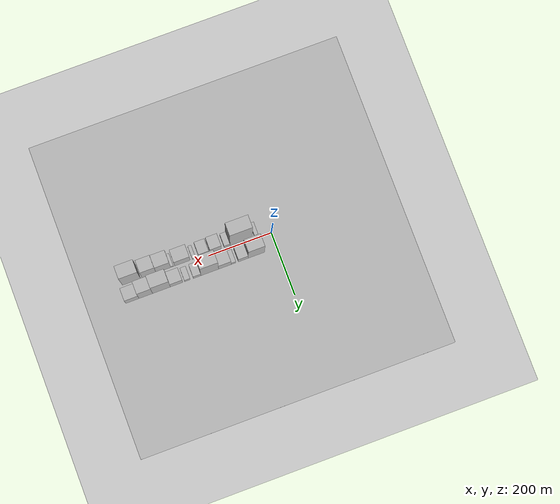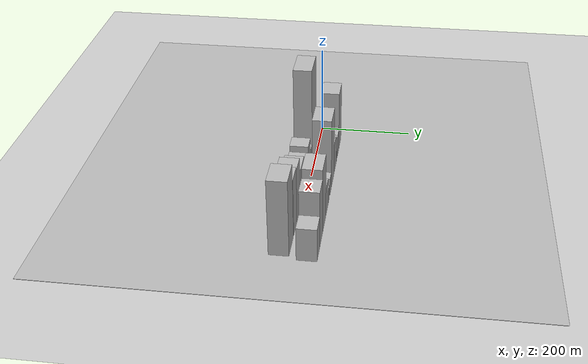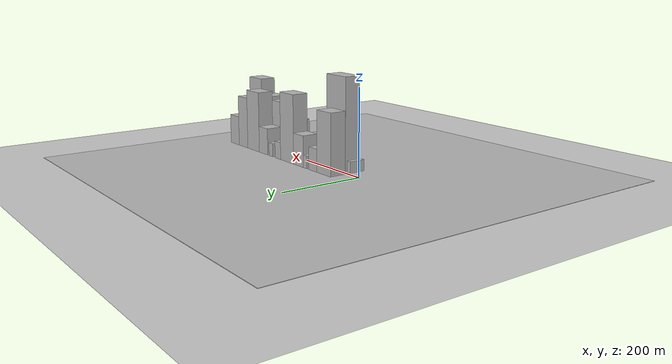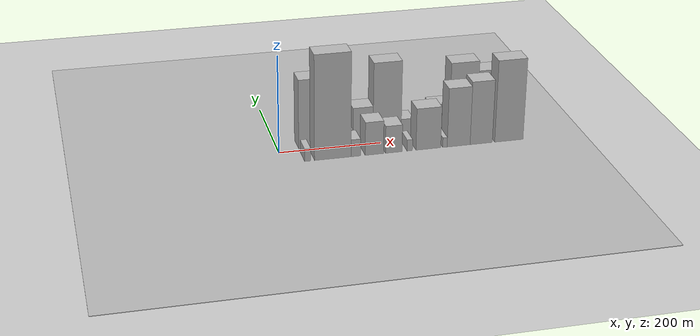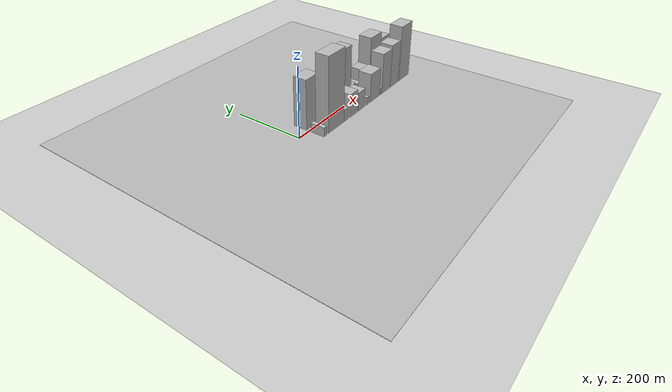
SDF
<?xml version="1.0" encoding="utf-8"?>

<sdf version="1.6">

   <world name="default">

      <gui fullscreen="0">

         <camera name="user_camera">

            <pose>-15 0 4.57585 0 0 0</pose>

            <view_controller>orbit</view_controller>

         </camera>

      </gui>

      <scene>

         <sky>

           <clouds>

             <speed>12</speed>

           </clouds>

         </sky>

         <ambient>0.4 0.4 0.4 1</ambient>

         <background>0.7 0.7 0.7 1</background>

         <shadows>1</shadows>

      </scene>

      <gravity>0 0 -9.8066</gravity>

      <magnetic_field>6e-06 2.3e-05 -4.2e-05</magnetic_field>

      <physics default="0" name="default_physics" type="ode">

         <ode>

            <solver>

               <type>quick</type>

               <iters>10</iters>

               <sor>1.0</sor>

               <use_dynamic_moi_rescaling>0</use_dynamic_moi_rescaling>

            </solver>

            <constraints>

               <cfm>0</cfm>

               <erp>0.2</erp>

               <contact_max_correcting_vel>100</contact_max_correcting_vel>

               <contact_surface_layer>0.001</contact_surface_layer>

            </constraints>

         </ode>

         <max_step_size>0.004</max_step_size>

         <real_time_factor>1</real_time_factor>

         <real_time_update_rate>250</real_time_update_rate>

      </physics>

      <light name="sun" type="directional">

         <cast_shadows>1</cast_shadows>

         <pose>0 0 10 0 0 0</pose>

         <diffuse>0.8 0.8 0.8 1</diffuse>

         <specular>0.2 0.2 0.2 1</specular>

         <attenuation>

            <range>1000</range>

            <constant>0.9</constant>

            <linear>0.01</linear>

            <quadratic>0.001</quadratic>

         </attenuation>

         <direction>-0.5 0.1 -0.9</direction>

      </light>

      <include>

         <name>ground_plane_1</name>

         <uri>model://HANNAS_ground_plane</uri>

         <pose>0 0 0  0 0 0</pose>

      </include>

      <include>

         <name>ground_plane_2</name>

         <uri>model://HANNAS_ground_plane</uri>

         <pose>100 0 0  0 0 0</pose>

      </include>

      <model name="building_1">

         <static>1</static>

         <pose frame="">66.0236 27.5000 0 0.000000 0.000000 1.570796</pose>

         <link name="link">

            <pose frame="">0 0 72.00 0 0 0</pose>

            <collision name="collision">

               <geometry>

                  <box>

                     <size>40.0000 52.0472 144.0000</size>

                  </box>

               </geometry>

               <max_contacts>10</max_contacts>

               <surface>

                  <contact>

                     <ode/>

                  </contact>

                  <bounce/>

                  <friction>

                     <torsional>

                        <ode/>

                     </torsional>

                     <ode/>

                  </friction>

               </surface>

            </collision>

            <visual name="visual">

               <cast_shadows>0</cast_shadows>

               <geometry>

                  <box>

                     <size>40.0000 52.0472 144.0000</size>

                  </box>

               </geometry>

               <material>

                  <script>

                     <uri>model://HANNAS_wall/materials/scripts</uri>

                     <uri>model://HANNAS_wall/materials/textures</uri>

                     <name>vrc/HANNAS_wall</name>

                  </script>

               </material>

            </visual>

            <self_collide>0</self_collide>

            <enable_wind>0</enable_wind>

            <kinematic>0</kinematic>

         </link>

      </model>

      <model name="building_2">

         <static>1</static>

         <pose frame="">107.8734 27.5000 0 0.000000 0.000000 1.570796</pose>

         <link name="link">

            <pose frame="">0 0 27.00 0 0 0</pose>

            <collision name="collision">

               <geometry>

                  <box>

                     <size>40.0000 31.6524 54.0000</size>

                  </box>

               </geometry>

               <max_contacts>10</max_contacts>

               <surface>

                  <contact>

                     <ode/>

                  </contact>

                  <bounce/>

                  <friction>

                     <torsional>

                        <ode/>

                     </torsional>

                     <ode/>

                  </friction>

               </surface>

            </collision>

            <visual name="visual">

               <cast_shadows>0</cast_shadows>

               <geometry>

                  <box>

                     <size>40.0000 31.6524 54.0000</size>

                  </box>

               </geometry>

               <material>

                  <script>

                     <uri>model://HANNAS_wall/materials/scripts</uri>

                     <uri>model://HANNAS_wall/materials/textures</uri>

                     <name>vrc/HANNAS_wall</name>

                  </script>

               </material>

            </visual>

            <self_collide>0</self_collide>

            <enable_wind>0</enable_wind>

            <kinematic>0</kinematic>

         </link>

      </model>

      <model name="building_3">

         <static>1</static>

         <pose frame="">139.3408 27.5000 0 0.000000 0.000000 1.570796</pose>

         <link name="link">

            <pose frame="">0 0 15.00 0 0 0</pose>

            <collision name="collision">

               <geometry>

                  <box>

                     <size>40.0000 15.2824 30.0000</size>

                  </box>

               </geometry>

               <max_contacts>10</max_contacts>

               <surface>

                  <contact>

                     <ode/>

                  </contact>

                  <bounce/>

                  <friction>

                     <torsional>

                        <ode/>

                     </torsional>

                     <ode/>

                  </friction>

               </surface>

            </collision>

            <visual name="visual">

               <cast_shadows>0</cast_shadows>

               <geometry>

                  <box>

                     <size>40.0000 15.2824 30.0000</size>

                  </box>

               </geometry>

               <material>

                  <script>

                     <uri>model://HANNAS_wall/materials/scripts</uri>

                     <uri>model://HANNAS_wall/materials/textures</uri>

                     <name>vrc/HANNAS_wall</name>

                  </script>

               </material>

            </visual>

            <self_collide>0</self_collide>

            <enable_wind>0</enable_wind>

            <kinematic>0</kinematic>

         </link>

      </model>

      <model name="building_4">

         <static>1</static>

         <pose frame="">167.0025 27.5000 0 0.000000 0.000000 1.570796</pose>

         <link name="link">

            <pose frame="">0 0 37.50 0 0 0</pose>

            <collision name="collision">

               <geometry>

                  <box>

                     <size>40.0000 40.0409 75.0000</size>

                  </box>

               </geometry>

               <max_contacts>10</max_contacts>

               <surface>

                  <contact>

                     <ode/>

                  </contact>

                  <bounce/>

                  <friction>

                     <torsional>

                        <ode/>

                     </torsional>

                     <ode/>

                  </friction>

               </surface>

            </collision>

            <visual name="visual">

               <cast_shadows>0</cast_shadows>

               <geometry>

                  <box>

                     <size>40.0000 40.0409 75.0000</size>

                  </box>

               </geometry>

               <material>

                  <script>

                     <uri>model://HANNAS_wall/materials/scripts</uri>

                     <uri>model://HANNAS_wall/materials/textures</uri>

                     <name>vrc/HANNAS_wall</name>

                  </script>

               </material>

            </visual>

            <self_collide>0</self_collide>

            <enable_wind>0</enable_wind>

            <kinematic>0</kinematic>

         </link>

      </model>

      <model name="building_5">

         <static>1</static>

         <pose frame="">215.1390 27.5000 0 0.000000 0.000000 1.570796</pose>

         <link name="link">

            <pose frame="">0 0 82.50 0 0 0</pose>

            <collision name="collision">

               <geometry>

                  <box>

                     <size>40.0000 56.2321 165.0000</size>

                  </box>

               </geometry>

               <max_contacts>10</max_contacts>

               <surface>

                  <contact>

                     <ode/>

                  </contact>

                  <bounce/>

                  <friction>

                     <torsional>

                        <ode/>

                     </torsional>

                     <ode/>

                  </friction>

               </surface>

            </collision>

            <visual name="visual">

               <cast_shadows>0</cast_shadows>

               <geometry>

                  <box>

                     <size>40.0000 56.2321 165.0000</size>

                  </box>

               </geometry>

               <material>

                  <script>

                     <uri>model://HANNAS_wall/materials/scripts</uri>

                     <uri>model://HANNAS_wall/materials/textures</uri>

                     <name>vrc/HANNAS_wall</name>

                  </script>

               </material>

            </visual>

            <self_collide>0</self_collide>

            <enable_wind>0</enable_wind>

            <kinematic>0</kinematic>

         </link>

      </model>

      <model name="building_6">

         <static>1</static>

         <pose frame="">255.5526 27.5000 0 0.000000 0.000000 1.570796</pose>

         <link name="link">

            <pose frame="">0 0 21.00 0 0 0</pose>

            <collision name="collision">

               <geometry>

                  <box>

                     <size>40.0000 24.5952 42.0000</size>

                  </box>

               </geometry>

               <max_contacts>10</max_contacts>

               <surface>

                  <contact>

                     <ode/>

                  </contact>

                  <bounce/>

                  <friction>

                     <torsional>

                        <ode/>

                     </torsional>

                     <ode/>

                  </friction>

               </surface>

            </collision>

            <visual name="visual">

               <cast_shadows>0</cast_shadows>

               <geometry>

                  <box>

                     <size>40.0000 24.5952 42.0000</size>

                  </box>

               </geometry>

               <material>

                  <script>

                     <uri>model://HANNAS_wall/materials/scripts</uri>

                     <uri>model://HANNAS_wall/materials/textures</uri>

                     <name>vrc/HANNAS_wall</name>

                  </script>

               </material>

            </visual>

            <self_collide>0</self_collide>

            <enable_wind>0</enable_wind>

            <kinematic>0</kinematic>

         </link>

      </model>

      <model name="building_7">

         <static>1</static>

         <pose frame="">286.8297 27.5000 0 0.000000 0.000000 1.570796</pose>

         <link name="link">

            <pose frame="">0 0 16.50 0 0 0</pose>

            <collision name="collision">

               <geometry>

                  <box>

                     <size>40.0000 17.9591 33.0000</size>

                  </box>

               </geometry>

               <max_contacts>10</max_contacts>

               <surface>

                  <contact>

                     <ode/>

                  </contact>

                  <bounce/>

                  <friction>

                     <torsional>

                        <ode/>

                     </torsional>

                     <ode/>

                  </friction>

               </surface>

            </collision>

            <visual name="visual">

               <cast_shadows>0</cast_shadows>

               <geometry>

                  <box>

                     <size>40.0000 17.9591 33.0000</size>

                  </box>

               </geometry>

               <material>

                  <script>

                     <uri>model://HANNAS_wall/materials/scripts</uri>

                     <uri>model://HANNAS_wall/materials/textures</uri>

                     <name>vrc/HANNAS_wall</name>

                  </script>

               </material>

            </visual>

            <self_collide>0</self_collide>

            <enable_wind>0</enable_wind>

            <kinematic>0</kinematic>

         </link>

      </model>

      <model name="building_8">

         <static>1</static>

         <pose frame="">321.4798 27.5000 0 0.000000 0.000000 1.570796</pose>

         <link name="link">

            <pose frame="">0 0 33.00 0 0 0</pose>

            <collision name="collision">

               <geometry>

                  <box>

                     <size>40.0000 39.3410 66.0000</size>

                  </box>

               </geometry>

               <max_contacts>10</max_contacts>

               <surface>

                  <contact>

                     <ode/>

                  </contact>

                  <bounce/>

                  <friction>

                     <torsional>

                        <ode/>

                     </torsional>

                     <ode/>

                  </friction>

               </surface>

            </collision>

            <visual name="visual">

               <cast_shadows>0</cast_shadows>

               <geometry>

                  <box>

                     <size>40.0000 39.3410 66.0000</size>

                  </box>

               </geometry>

               <material>

                  <script>

                     <uri>model://HANNAS_wall/materials/scripts</uri>

                     <uri>model://HANNAS_wall/materials/textures</uri>

                     <name>vrc/HANNAS_wall</name>

                  </script>

               </material>

            </visual>

            <self_collide>0</self_collide>

            <enable_wind>0</enable_wind>

            <kinematic>0</kinematic>

         </link>

      </model>

      <model name="building_9">

         <static>1</static>

         <pose frame="">369.4416 27.5000 0 0.000000 0.000000 1.570796</pose>

         <link name="link">

            <pose frame="">0 0 75.00 0 0 0</pose>

            <collision name="collision">

               <geometry>

                  <box>

                     <size>40.0000 56.5825 150.0000</size>

                  </box>

               </geometry>

               <max_contacts>10</max_contacts>

               <surface>

                  <contact>

                     <ode/>

                  </contact>

                  <bounce/>

                  <friction>

                     <torsional>

                        <ode/>

                     </torsional>

                     <ode/>

                  </friction>

               </surface>

            </collision>

            <visual name="visual">

               <cast_shadows>0</cast_shadows>

               <geometry>

                  <box>

                     <size>40.0000 56.5825 150.0000</size>

                  </box>

               </geometry>

               <material>

                  <script>

                     <uri>model://HANNAS_wall/materials/scripts</uri>

                     <uri>model://HANNAS_wall/materials/textures</uri>

                     <name>vrc/HANNAS_wall</name>

                  </script>

               </material>

            </visual>

            <self_collide>0</self_collide>

            <enable_wind>0</enable_wind>

            <kinematic>0</kinematic>

         </link>

      </model>

      <model name="building_10">

         <static>1</static>

         <pose frame="">419.4375 27.5000 0 0.000000 0.000000 1.570796</pose>

         <link name="link">

            <pose frame="">0 0 64.50 0 0 0</pose>

            <collision name="collision">

               <geometry>

                  <box>

                     <size>40.0000 43.4092 129.0000</size>

                  </box>

               </geometry>

               <max_contacts>10</max_contacts>

               <surface>

                  <contact>

                     <ode/>

                  </contact>

                  <bounce/>

                  <friction>

                     <torsional>

                        <ode/>

                     </torsional>

                     <ode/>

                  </friction>

               </surface>

            </collision>

            <visual name="visual">

               <cast_shadows>0</cast_shadows>

               <geometry>

                  <box>

                     <size>40.0000 43.4092 129.0000</size>

                  </box>

               </geometry>

               <material>

                  <script>

                     <uri>model://HANNAS_wall/materials/scripts</uri>

                     <uri>model://HANNAS_wall/materials/textures</uri>

                     <name>vrc/HANNAS_wall</name>

                  </script>

               </material>

            </visual>

            <self_collide>0</self_collide>

            <enable_wind>0</enable_wind>

            <kinematic>0</kinematic>

         </link>

      </model>

      <model name="building_11">

         <static>1</static>

         <pose frame="">462.3519 27.5000 0 0.000000 0.000000 1.570796</pose>

         <link name="link">

            <pose frame="">0 0 37.50 0 0 0</pose>

            <collision name="collision">

               <geometry>

                  <box>

                     <size>40.0000 42.4197 75.0000</size>

                  </box>

               </geometry>

               <max_contacts>10</max_contacts>

               <surface>

                  <contact>

                     <ode/>

                  </contact>

                  <bounce/>

                  <friction>

                     <torsional>

                        <ode/>

                     </torsional>

                     <ode/>

                  </friction>

               </surface>

            </collision>

            <visual name="visual">

               <cast_shadows>0</cast_shadows>

               <geometry>

                  <box>

                     <size>40.0000 42.4197 75.0000</size>

                  </box>

               </geometry>

               <material>

                  <script>

                     <uri>model://HANNAS_wall/materials/scripts</uri>

                     <uri>model://HANNAS_wall/materials/textures</uri>

                     <name>vrc/HANNAS_wall</name>

                  </script>

               </material>

            </visual>

            <self_collide>0</self_collide>

            <enable_wind>0</enable_wind>

            <kinematic>0</kinematic>

         </link>

      </model>

      <model name="building_12">

         <static>1</static>

         <pose frame="">45.9748 -27.5000 0 0.000000 0.000000 1.570796</pose>

         <link name="link">

            <pose frame="">0 0 13.50 0 0 0</pose>

            <collision name="collision">

               <geometry>

                  <box>

                     <size>40.0000 11.9496 27.0000</size>

                  </box>

               </geometry>

               <max_contacts>10</max_contacts>

               <surface>

                  <contact>

                     <ode/>

                  </contact>

                  <bounce/>

                  <friction>

                     <torsional>

                        <ode/>

                     </torsional>

                     <ode/>

                  </friction>

               </surface>

            </collision>

            <visual name="visual">

               <cast_shadows>0</cast_shadows>

               <geometry>

                  <box>

                     <size>40.0000 11.9496 27.0000</size>

                  </box>

               </geometry>

               <material>

                  <script>

                     <uri>model://HANNAS_wall/materials/scripts</uri>

                     <uri>model://HANNAS_wall/materials/textures</uri>

                     <name>vrc/HANNAS_wall</name>

                  </script>

               </material>

            </visual>

            <self_collide>0</self_collide>

            <enable_wind>0</enable_wind>

            <kinematic>0</kinematic>

         </link>

      </model>

      <model name="building_13">

         <static>1</static>

         <pose frame="">94.4016 -27.5000 0 0.000000 0.000000 1.570796</pose>

         <link name="link">

            <pose frame="">0 0 108.00 0 0 0</pose>

            <collision name="collision">

               <geometry>

                  <box>

                     <size>40.0000 70.9041 216.0000</size>

                  </box>

               </geometry>

               <max_contacts>10</max_contacts>

               <surface>

                  <contact>

                     <ode/>

                  </contact>

                  <bounce/>

                  <friction>

                     <torsional>

                        <ode/>

                     </torsional>

                     <ode/>

                  </friction>

               </surface>

            </collision>

            <visual name="visual">

               <cast_shadows>0</cast_shadows>

               <geometry>

                  <box>

                     <size>40.0000 70.9041 216.0000</size>

                  </box>

               </geometry>

               <material>

                  <script>

                     <uri>model://HANNAS_wall/materials/scripts</uri>

                     <uri>model://HANNAS_wall/materials/textures</uri>

                     <name>vrc/HANNAS_wall</name>

                  </script>

               </material>

            </visual>

            <self_collide>0</self_collide>

            <enable_wind>0</enable_wind>

            <kinematic>0</kinematic>

         </link>

      </model>

      <model name="building_14">

         <static>1</static>

         <pose frame="">139.2640 -27.5000 0 0.000000 0.000000 1.570796</pose>

         <link name="link">

            <pose frame="">0 0 18.00 0 0 0</pose>

            <collision name="collision">

               <geometry>

                  <box>

                     <size>40.0000 18.8206 36.0000</size>

                  </box>

               </geometry>

               <max_contacts>10</max_contacts>

               <surface>

                  <contact>

                     <ode/>

                  </contact>

                  <bounce/>

                  <friction>

                     <torsional>

                        <ode/>

                     </torsional>

                     <ode/>

                  </friction>

               </surface>

            </collision>

            <visual name="visual">

               <cast_shadows>0</cast_shadows>

               <geometry>

                  <box>

                     <size>40.0000 18.8206 36.0000</size>

                  </box>

               </geometry>

               <material>

                  <script>

                     <uri>model://HANNAS_wall/materials/scripts</uri>

                     <uri>model://HANNAS_wall/materials/textures</uri>

                     <name>vrc/HANNAS_wall</name>

                  </script>

               </material>

            </visual>

            <self_collide>0</self_collide>

            <enable_wind>0</enable_wind>

            <kinematic>0</kinematic>

         </link>

      </model>

      <model name="building_15">

         <static>1</static>

         <pose frame="">175.6849 -27.5000 0 0.000000 0.000000 1.570796</pose>

         <link name="link">

            <pose frame="">0 0 34.50 0 0 0</pose>

            <collision name="collision">

               <geometry>

                  <box>

                     <size>40.0000 36.0212 69.0000</size>

                  </box>

               </geometry>

               <max_contacts>10</max_contacts>

               <surface>

                  <contact>

                     <ode/>

                  </contact>

                  <bounce/>

                  <friction>

                     <torsional>

                        <ode/>

                     </torsional>

                     <ode/>

                  </friction>

               </surface>

            </collision>

            <visual name="visual">

               <cast_shadows>0</cast_shadows>

               <geometry>

                  <box>

                     <size>40.0000 36.0212 69.0000</size>

                  </box>

               </geometry>

               <material>

                  <script>

                     <uri>model://HANNAS_wall/materials/scripts</uri>

                     <uri>model://HANNAS_wall/materials/textures</uri>

                     <name>vrc/HANNAS_wall</name>

                  </script>

               </material>

            </visual>

            <self_collide>0</self_collide>

            <enable_wind>0</enable_wind>

            <kinematic>0</kinematic>

         </link>

      </model>

      <model name="building_16">

         <static>1</static>

         <pose frame="">214.0021 -27.5000 0 0.000000 0.000000 1.570796</pose>

         <link name="link">

            <pose frame="">0 0 28.50 0 0 0</pose>

            <collision name="collision">

               <geometry>

                  <box>

                     <size>40.0000 32.6134 57.0000</size>

                  </box>

               </geometry>

               <max_contacts>10</max_contacts>

               <surface>

                  <contact>

                     <ode/>

                  </contact>

                  <bounce/>

                  <friction>

                     <torsional>

                        <ode/>

                     </torsional>

                     <ode/>

                  </friction>

               </surface>

            </collision>

            <visual name="visual">

               <cast_shadows>0</cast_shadows>

               <geometry>

                  <box>

                     <size>40.0000 32.6134 57.0000</size>

                  </box>

               </geometry>

               <material>

                  <script>

                     <uri>model://HANNAS_wall/materials/scripts</uri>

                     <uri>model://HANNAS_wall/materials/textures</uri>

                     <name>vrc/HANNAS_wall</name>

                  </script>

               </material>

            </visual>

            <self_collide>0</self_collide>

            <enable_wind>0</enable_wind>

            <kinematic>0</kinematic>

         </link>

      </model>

      <model name="building_17">

         <static>1</static>

         <pose frame="">245.6522 -27.5000 0 0.000000 0.000000 1.570796</pose>

         <link name="link">

            <pose frame="">0 0 12.00 0 0 0</pose>

            <collision name="collision">

               <geometry>

                  <box>

                     <size>40.0000 10.6868 24.0000</size>

                  </box>

               </geometry>

               <max_contacts>10</max_contacts>

               <surface>

                  <contact>

                     <ode/>

                  </contact>

                  <bounce/>

                  <friction>

                     <torsional>

                        <ode/>

                     </torsional>

                     <ode/>

                  </friction>

               </surface>

            </collision>

            <visual name="visual">

               <cast_shadows>0</cast_shadows>

               <geometry>

                  <box>

                     <size>40.0000 10.6868 24.0000</size>

                  </box>

               </geometry>

               <material>

                  <script>

                     <uri>model://HANNAS_wall/materials/scripts</uri>

                     <uri>model://HANNAS_wall/materials/textures</uri>

                     <name>vrc/HANNAS_wall</name>

                  </script>

               </material>

            </visual>

            <self_collide>0</self_collide>

            <enable_wind>0</enable_wind>

            <kinematic>0</kinematic>

         </link>

      </model>

      <model name="building_18">

         <static>1</static>

         <pose frame="">282.7163 -27.5000 0 0.000000 0.000000 1.570796</pose>

         <link name="link">

            <pose frame="">0 0 43.50 0 0 0</pose>

            <collision name="collision">

               <geometry>

                  <box>

                     <size>40.0000 49.4414 87.0000</size>

                  </box>

               </geometry>

               <max_contacts>10</max_contacts>

               <surface>

                  <contact>

                     <ode/>

                  </contact>

                  <bounce/>

                  <friction>

                     <torsional>

                        <ode/>

                     </torsional>

                     <ode/>

                  </friction>

               </surface>

            </collision>

            <visual name="visual">

               <cast_shadows>0</cast_shadows>

               <geometry>

                  <box>

                     <size>40.0000 49.4414 87.0000</size>

                  </box>

               </geometry>

               <material>

                  <script>

                     <uri>model://HANNAS_wall/materials/scripts</uri>

                     <uri>model://HANNAS_wall/materials/textures</uri>

                     <name>vrc/HANNAS_wall</name>

                  </script>

               </material>

            </visual>

            <self_collide>0</self_collide>

            <enable_wind>0</enable_wind>

            <kinematic>0</kinematic>

         </link>

      </model>

      <model name="building_19">

         <static>1</static>

         <pose frame="">315.8772 -27.5000 0 0.000000 0.000000 1.570796</pose>

         <link name="link">

            <pose frame="">0 0 10.50 0 0 0</pose>

            <collision name="collision">

               <geometry>

                  <box>

                     <size>40.0000 8.8803 21.0000</size>

                  </box>

               </geometry>

               <max_contacts>10</max_contacts>

               <surface>

                  <contact>

                     <ode/>

                  </contact>

                  <bounce/>

                  <friction>

                     <torsional>

                        <ode/>

                     </torsional>

                     <ode/>

                  </friction>

               </surface>

            </collision>

            <visual name="visual">

               <cast_shadows>0</cast_shadows>

               <geometry>

                  <box>

                     <size>40.0000 8.8803 21.0000</size>

                  </box>

               </geometry>

               <material>

                  <script>

                     <uri>model://HANNAS_wall/materials/scripts</uri>

                     <uri>model://HANNAS_wall/materials/textures</uri>

                     <name>vrc/HANNAS_wall</name>

                  </script>

               </material>

            </visual>

            <self_collide>0</self_collide>

            <enable_wind>0</enable_wind>

            <kinematic>0</kinematic>

         </link>

      </model>

      <model name="building_20">

         <static>1</static>

         <pose frame="">343.4144 -27.5000 0 0.000000 0.000000 1.570796</pose>

         <link name="link">

            <pose frame="">0 0 61.50 0 0 0</pose>

            <collision name="collision">

               <geometry>

                  <box>

                     <size>40.0000 46.1942 123.0000</size>

                  </box>

               </geometry>

               <max_contacts>10</max_contacts>

               <surface>

                  <contact>

                     <ode/>

                  </contact>

                  <bounce/>

                  <friction>

                     <torsional>

                        <ode/>

                     </torsional>

                     <ode/>

                  </friction>

               </surface>

            </collision>

            <visual name="visual">

               <cast_shadows>0</cast_shadows>

               <geometry>

                  <box>

                     <size>40.0000 46.1942 123.0000</size>

                  </box>

               </geometry>

               <material>

                  <script>

                     <uri>model://HANNAS_wall/materials/scripts</uri>

                     <uri>model://HANNAS_wall/materials/textures</uri>

                     <name>vrc/HANNAS_wall</name>

                  </script>

               </material>

            </visual>

            <self_collide>0</self_collide>

            <enable_wind>0</enable_wind>

            <kinematic>0</kinematic>

         </link>

      </model>

      <model name="building_21">

         <static>1</static>

         <pose frame="">388.9727 -27.5000 0 0.000000 0.000000 1.570796</pose>

         <link name="link">

            <pose frame="">0 0 66.00 0 0 0</pose>

            <collision name="collision">

               <geometry>

                  <box>

                     <size>40.0000 44.9225 132.0000</size>

                  </box>

               </geometry>

               <max_contacts>10</max_contacts>

               <surface>

                  <contact>

                     <ode/>

                  </contact>

                  <bounce/>

                  <friction>

                     <torsional>

                        <ode/>

                     </torsional>

                     <ode/>

                  </friction>

               </surface>

            </collision>

            <visual name="visual">

               <cast_shadows>0</cast_shadows>

               <geometry>

                  <box>

                     <size>40.0000 44.9225 132.0000</size>

                  </box>

               </geometry>

               <material>

                  <script>

                     <uri>model://HANNAS_wall/materials/scripts</uri>

                     <uri>model://HANNAS_wall/materials/textures</uri>

                     <name>vrc/HANNAS_wall</name>

                  </script>

               </material>

            </visual>

            <self_collide>0</self_collide>

            <enable_wind>0</enable_wind>

            <kinematic>0</kinematic>

         </link>

      </model>

      <model name="building_22">

         <static>1</static>

         <pose frame="">445.3066 -27.5000 0 0.000000 0.000000 1.570796</pose>

         <link name="link">

            <pose frame="">0 0 85.50 0 0 0</pose>

            <collision name="collision">

               <geometry>

                  <box>

                     <size>40.0000 57.7452 171.0000</size>

                  </box>

               </geometry>

               <max_contacts>10</max_contacts>

               <surface>

                  <contact>

                     <ode/>

                  </contact>

                  <bounce/>

                  <friction>

                     <torsional>

                        <ode/>

                     </torsional>

                     <ode/>

                  </friction>

               </surface>

            </collision>

            <visual name="visual">

               <cast_shadows>0</cast_shadows>

               <geometry>

                  <box>

                     <size>40.0000 57.7452 171.0000</size>

                  </box>

               </geometry>

               <material>

                  <script>

                     <uri>model://HANNAS_wall/materials/scripts</uri>

                     <uri>model://HANNAS_wall/materials/textures</uri>

                     <name>vrc/HANNAS_wall</name>

                  </script>

               </material>

            </visual>

            <self_collide>0</self_collide>

            <enable_wind>0</enable_wind>

            <kinematic>0</kinematic>

         </link>

      </model>

   </world>

</sdf>

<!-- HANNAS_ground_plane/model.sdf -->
<sdf version="1.4">
<model name="HANNAS_ground_plane">
  <static>true</static>
    <link name="link">
      <collision name="collision">
        <geometry>
          <plane>
            <normal>0 0 1</normal>
            <size>1000 1000</size>
          </plane>
        </geometry>
        <surface>
          <friction>
            <ode>
              <mu>100</mu>
              <mu2>50</mu2>
            </ode>
          </friction>
        </surface>
      </collision>
      <visual name="visual">
        <cast_shadows>false</cast_shadows>
        <geometry>
          <plane>
            <normal>0 0 1</normal>
            <size>1000 1000</size>
          </plane>
        </geometry>
        <material>
          <script>
            <uri>model://HANNAS_ground_plane/materials/scripts/HANNAS_ground_plane.material</uri>
	    <uri>model://HANNAS_ground_plane/materials/textures</uri>
            <name>HANNASGroundPlane/Image</name>
          </script>
        </material>
      </visual>
    </link>
  </model>
</sdf>
